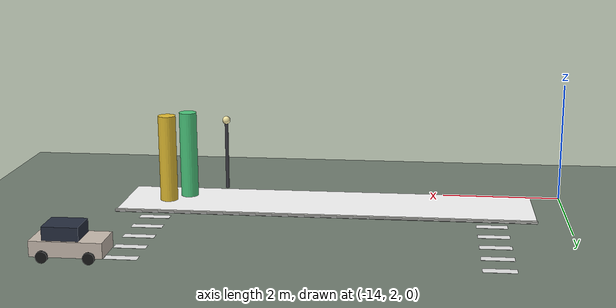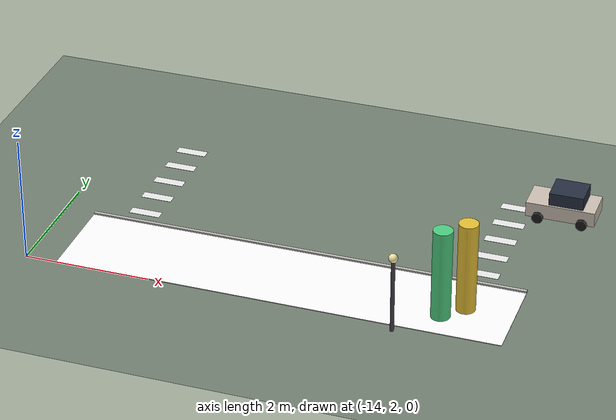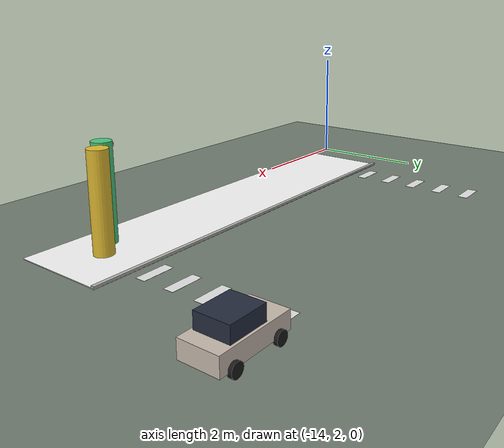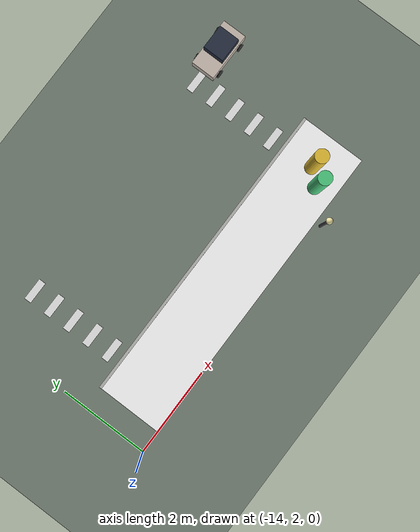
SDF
<sdf version="1.9">
 <world name="limo_city_blocks">
  <model name="ground_plane">
   <static>true</static>
   <link name="link">
    <collision name="collision">
     <geometry><plane><normal>0 0 1</normal><size>53 53</size></plane></geometry>
     <surface><friction><ode><mu>0.8</mu><mu2>0.8</mu2></ode></friction></surface>
    </collision>
    <visual name="visual">
     <geometry><plane><normal>0 0 1</normal><size>53 53</size></plane></geometry>
     <material><ambient>0.45 0.5 0.45 1</ambient><diffuse>0.45 0.5 0.45 1</diffuse></material>
    </visual>
   </link>
  </model>
  <model name="walk_n_0_1">
   <static>true</static>
   <pose>-10.000 2.750 0.008 0 0 0.000</pose>
   <link name="link">
    <visual name="visual">
     <geometry><box><size>7.000 1.500 0.012</size></box></geometry>
     <material>
      <ambient>1 1 1 1</ambient>
      <diffuse>1 1 1 1</diffuse>
      <pbr>
       <metal>
        <albedo_map>model://city_textures/paving.png</albedo_map>
        <roughness>0.85</roughness>
        <metalness>0.0</metalness>
       </metal>
      </pbr>
     </material>
    </visual>
   </link>
  </model>
  <model name="curb_n_0_1">
   <static>true</static>
   <pose>-10.000 3.470 0.020 0 0 0.000</pose>
   <link name="link">
    <visual name="visual">
     <geometry><box><size>7.000 0.060 0.040</size></box></geometry>
     <material><ambient>0.72 0.72 0.7 1</ambient><diffuse>0.72 0.72 0.7 1</diffuse></material>
    </visual>
   </link>
  </model>
  <model name="lamp_3">
   <static>true</static>
   <pose>-8.120 1.880 0 0 0 0</pose>
   <link name="link">
    <collision name="collision">
     <pose>0 0 0.6 0 0 0</pose>
     <geometry><cylinder><radius>0.03</radius><length>1.2</length></cylinder></geometry>
    </collision>
    <visual name="pole">
     <pose>0 0 0.6 0 0 0</pose>
     <geometry><cylinder><radius>0.03</radius><length>1.2</length></cylinder></geometry>
     <material><ambient>0.2 0.2 0.22 1</ambient><diffuse>0.25 0.25 0.28 1</diffuse></material>
    </visual>
    <visual name="head">
     <pose>0 0 1.25 0 0 0</pose>
     <geometry><sphere><radius>0.07</radius></sphere></geometry>
     <material>
      <ambient>0.9 0.85 0.6 1</ambient>
      <diffuse>0.95 0.9 0.65 1</diffuse>
      <emissive>0.5 0.45 0.25 1</emissive>
     </material>
    </visual>
   </link>
  </model>
  <model name="zebra_18_0">
   <static>true</static>
   <pose>-12.750 3.750 0.013 0 0 0.000</pose>
   <link name="link">
    <visual name="visual">
     <geometry><box><size>0.500 0.160 0.002</size></box></geometry>
     <material><ambient>0.92 0.92 0.92 1</ambient><diffuse>0.92 0.92 0.92 1</diffuse></material>
    </visual>
   </link>
  </model>
  <model name="zebra_18_1">
   <static>true</static>
   <pose>-12.750 4.250 0.013 0 0 0.000</pose>
   <link name="link">
    <visual name="visual">
     <geometry><box><size>0.500 0.160 0.002</size></box></geometry>
     <material><ambient>0.92 0.92 0.92 1</ambient><diffuse>0.92 0.92 0.92 1</diffuse></material>
    </visual>
   </link>
  </model>
  <model name="zebra_18_2">
   <static>true</static>
   <pose>-12.750 4.750 0.013 0 0 0.000</pose>
   <link name="link">
    <visual name="visual">
     <geometry><box><size>0.500 0.160 0.002</size></box></geometry>
     <material><ambient>0.92 0.92 0.92 1</ambient><diffuse>0.92 0.92 0.92 1</diffuse></material>
    </visual>
   </link>
  </model>
  <model name="zebra_18_3">
   <static>true</static>
   <pose>-12.750 5.250 0.013 0 0 0.000</pose>
   <link name="link">
    <visual name="visual">
     <geometry><box><size>0.500 0.160 0.002</size></box></geometry>
     <material><ambient>0.92 0.92 0.92 1</ambient><diffuse>0.92 0.92 0.92 1</diffuse></material>
    </visual>
   </link>
  </model>
  <model name="zebra_18_4">
   <static>true</static>
   <pose>-12.750 5.750 0.013 0 0 0.000</pose>
   <link name="link">
    <visual name="visual">
     <geometry><box><size>0.500 0.160 0.002</size></box></geometry>
     <material><ambient>0.92 0.92 0.92 1</ambient><diffuse>0.92 0.92 0.92 1</diffuse></material>
    </visual>
   </link>
  </model>
  <model name="zebra_19_0">
   <static>true</static>
   <pose>-7.250 3.750 0.013 0 0 0.000</pose>
   <link name="link">
    <visual name="visual">
     <geometry><box><size>0.500 0.160 0.002</size></box></geometry>
     <material><ambient>0.92 0.92 0.92 1</ambient><diffuse>0.92 0.92 0.92 1</diffuse></material>
    </visual>
   </link>
  </model>
  <model name="zebra_19_1">
   <static>true</static>
   <pose>-7.250 4.250 0.013 0 0 0.000</pose>
   <link name="link">
    <visual name="visual">
     <geometry><box><size>0.500 0.160 0.002</size></box></geometry>
     <material><ambient>0.92 0.92 0.92 1</ambient><diffuse>0.92 0.92 0.92 1</diffuse></material>
    </visual>
   </link>
  </model>
  <model name="zebra_19_2">
   <static>true</static>
   <pose>-7.250 4.750 0.013 0 0 0.000</pose>
   <link name="link">
    <visual name="visual">
     <geometry><box><size>0.500 0.160 0.002</size></box></geometry>
     <material><ambient>0.92 0.92 0.92 1</ambient><diffuse>0.92 0.92 0.92 1</diffuse></material>
    </visual>
   </link>
  </model>
  <model name="zebra_19_3">
   <static>true</static>
   <pose>-7.250 5.250 0.013 0 0 0.000</pose>
   <link name="link">
    <visual name="visual">
     <geometry><box><size>0.500 0.160 0.002</size></box></geometry>
     <material><ambient>0.92 0.92 0.92 1</ambient><diffuse>0.92 0.92 0.92 1</diffuse></material>
    </visual>
   </link>
  </model>
  <model name="zebra_19_4">
   <static>true</static>
   <pose>-7.250 5.750 0.013 0 0 0.000</pose>
   <link name="link">
    <visual name="visual">
     <geometry><box><size>0.500 0.160 0.002</size></box></geometry>
     <material><ambient>0.92 0.92 0.92 1</ambient><diffuse>0.92 0.92 0.92 1</diffuse></material>
    </visual>
   </link>
  </model>
  <model name="ped_0_cross">
   <pose>-7.250 2.750 0 0 0 0</pose>
   <link name="body">
    <kinematic>true</kinematic>
    <collision name="collision">
     <pose>0 0 0.75 0 0 0</pose>
     <geometry><cylinder><radius>0.15</radius><length>1.5</length></cylinder></geometry>
    </collision>
    <visual name="visual">
     <pose>0 0 0.75 0 0 0</pose>
     <geometry><cylinder><radius>0.15</radius><length>1.5</length></cylinder></geometry>
     <material><ambient>0.9 0.75 0.2 1</ambient><diffuse>0.9 0.75 0.2 1</diffuse></material>
    </visual>
   </link>
   <plugin filename="gz-sim-velocity-control-system" name="gz::sim::systems::VelocityControl"/>
   <plugin filename="gz-sim-pose-publisher-system" name="gz::sim::systems::PosePublisher">
    <publish_model_pose>true</publish_model_pose>
    <publish_link_pose>false</publish_link_pose>
    <publish_collision_pose>false</publish_collision_pose>
    <publish_visual_pose>false</publish_visual_pose>
    <publish_sensor_pose>false</publish_sensor_pose>
    <use_pose_vector_msg>false</use_pose_vector_msg>
    <update_frequency>10</update_frequency>
   </plugin>
  </model>
  <model name="ped_2_cross">
   <pose>-7.250 2.750 0 0 0 0</pose>
   <link name="body">
    <kinematic>true</kinematic>
    <collision name="collision">
     <pose>0 0 0.75 0 0 0</pose>
     <geometry><cylinder><radius>0.15</radius><length>1.5</length></cylinder></geometry>
    </collision>
    <visual name="visual">
     <pose>0 0 0.75 0 0 0</pose>
     <geometry><cylinder><radius>0.15</radius><length>1.5</length></cylinder></geometry>
     <material><ambient>0.85 0.3 0.3 1</ambient><diffuse>0.85 0.3 0.3 1</diffuse></material>
    </visual>
   </link>
   <plugin filename="gz-sim-velocity-control-system" name="gz::sim::systems::VelocityControl"/>
   <plugin filename="gz-sim-pose-publisher-system" name="gz::sim::systems::PosePublisher">
    <publish_model_pose>true</publish_model_pose>
    <publish_link_pose>false</publish_link_pose>
    <publish_collision_pose>false</publish_collision_pose>
    <publish_visual_pose>false</publish_visual_pose>
    <publish_sensor_pose>false</publish_sensor_pose>
    <use_pose_vector_msg>false</use_pose_vector_msg>
    <update_frequency>10</update_frequency>
   </plugin>
  </model>
  <model name="ped_7_loop">
   <pose>-7.550 2.450 0 0 0 0</pose>
   <link name="body">
    <kinematic>true</kinematic>
    <collision name="collision">
     <pose>0 0 0.75 0 0 0</pose>
     <geometry><cylinder><radius>0.15</radius><length>1.5</length></cylinder></geometry>
    </collision>
    <visual name="visual">
     <pose>0 0 0.75 0 0 0</pose>
     <geometry><cylinder><radius>0.15</radius><length>1.5</length></cylinder></geometry>
     <material><ambient>0.3 0.8 0.5 1</ambient><diffuse>0.3 0.8 0.5 1</diffuse></material>
    </visual>
   </link>
   <plugin filename="gz-sim-velocity-control-system" name="gz::sim::systems::VelocityControl"/>
   <plugin filename="gz-sim-pose-publisher-system" name="gz::sim::systems::PosePublisher">
    <publish_model_pose>true</publish_model_pose>
    <publish_link_pose>false</publish_link_pose>
    <publish_collision_pose>false</publish_collision_pose>
    <publish_visual_pose>false</publish_visual_pose>
    <publish_sensor_pose>false</publish_sensor_pose>
    <use_pose_vector_msg>false</use_pose_vector_msg>
    <update_frequency>10</update_frequency>
   </plugin>
  </model>
  <model name="vehicle_5_car">
   <static>false</static>
   <pose>-6.500 5.750 0 0 0 3.142</pose>
   <link name="body">
    <kinematic>true</kinematic>
    <collision name="collision">
     <pose>0 0 0.2 0 0 0</pose>
     <geometry><box><size>1.10 0.55 0.40</size></box></geometry>
    </collision>
    <visual name="body_v">
     <pose>0 0 0.20 0 0 0</pose>
     <geometry><box><size>1.10 0.55 0.24</size></box></geometry>
     <material>
      <ambient>0.8 0.75 0.7 1</ambient>
      <diffuse>0.8 0.75 0.7 1</diffuse>
      <specular>0.4 0.4 0.4 1</specular>
     </material>
    </visual>
    <visual name="cabin">
     <pose>-0.08 0 0.42 0 0 0</pose>
     <geometry><box><size>0.55 0.48 0.22</size></box></geometry>
     <material>
      <ambient>0.12 0.15 0.2 1</ambient>
      <diffuse>0.15 0.18 0.25 1</diffuse>
      <specular>0.5 0.5 0.55 1</specular>
     </material>
    </visual>
    <visual name="wheel_0">
     <pose>0.35 0.29 0.09 1.5707 0 0</pose>
     <geometry><cylinder><radius>0.09</radius><length>0.06</length></cylinder></geometry>
     <material><ambient>0.08 0.08 0.08 1</ambient><diffuse>0.1 0.1 0.1 1</diffuse></material>
    </visual>
    <visual name="wheel_1">
     <pose>0.35 -0.29 0.09 1.5707 0 0</pose>
     <geometry><cylinder><radius>0.09</radius><length>0.06</length></cylinder></geometry>
     <material><ambient>0.08 0.08 0.08 1</ambient><diffuse>0.1 0.1 0.1 1</diffuse></material>
    </visual>
    <visual name="wheel_2">
     <pose>-0.35 0.29 0.09 1.5707 0 0</pose>
     <geometry><cylinder><radius>0.09</radius><length>0.06</length></cylinder></geometry>
     <material><ambient>0.08 0.08 0.08 1</ambient><diffuse>0.1 0.1 0.1 1</diffuse></material>
    </visual>
    <visual name="wheel_3">
     <pose>-0.35 -0.29 0.09 1.5707 0 0</pose>
     <geometry><cylinder><radius>0.09</radius><length>0.06</length></cylinder></geometry>
     <material><ambient>0.08 0.08 0.08 1</ambient><diffuse>0.1 0.1 0.1 1</diffuse></material>
    </visual>
   </link>
   <plugin filename="gz-sim-velocity-control-system" name="gz::sim::systems::VelocityControl"/>
   <plugin filename="gz-sim-pose-publisher-system" name="gz::sim::systems::PosePublisher">
    <publish_model_pose>true</publish_model_pose>
    <publish_link_pose>false</publish_link_pose>
    <publish_collision_pose>false</publish_collision_pose>
    <publish_visual_pose>false</publish_visual_pose>
    <publish_sensor_pose>false</publish_sensor_pose>
    <use_pose_vector_msg>false</use_pose_vector_msg>
    <update_frequency>15</update_frequency>
   </plugin>
  </model>
 </world>
</sdf>
